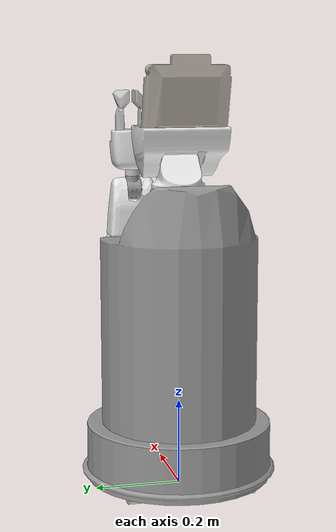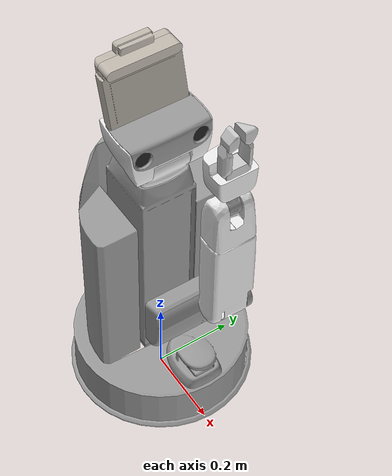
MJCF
<?xml version="1.0" ?>
<mujoco model="hsrb">
	<compiler meshdir="hsrb/meshes" texturedir="hsrb/textures" angle="radian" autolimits="true" balanceinertia="true" boundmass="0.000001" boundinertia="0.000001"/>
	<default>
		<default class="hsrb_visual">
			<geom contype="0" conaffinity="0"/>
		</default>
		<default class="hsrb_collision">
			<geom rgba="0.7843137254901961 0.7843137254901961 0.7843137254901961 0.0"/>
		</default>
	</default>
	<asset>
		<mesh name="base_light" file="obj/base_light.obj" scale="1.0 1.0 1.0"/>
		<mesh name="body_light" file="obj/body_light.obj" scale="1.0 1.0 1.0"/>
		<mesh name="torso_base" file="obj/torso_base.obj" scale="1.0 1.0 1.0"/>
		<mesh name="base" file="stl/base.stl" scale="1.0 1.0 1.0"/>
		<mesh name="laser" file="stl/laser.stl" scale="1.0 1.0 1.0"/>
		<mesh name="torso_light" file="obj/torso_light.obj" scale="1.0 1.0 1.0"/>
		<mesh name="torso" file="stl/torso.stl" scale="1.0 1.0 1.0"/>
		<mesh name="head_pan" file="stl/head_pan.stl" scale="1.0 1.0 1.0"/>
		<mesh name="head_upper" file="obj/head_upper.obj" scale="1.0 1.0 1.0"/>
		<mesh name="head_tilt" file="obj/head_tilt.obj" scale="1.0 1.0 1.0"/>
		<mesh name="tablet_base" file="obj/tablet_base.obj" scale="1.0 1.0 1.0"/>
		<mesh name="head" file="stl/head.stl" scale="1.0 1.0 1.0"/>
		<mesh name="tablet" file="stl/tablet.stl" scale="1.0 1.0 1.0"/>
		<mesh name="head_camera" file="obj/head_camera.obj" scale="1.0 1.0 1.0"/>
		<mesh name="rgbd_light" file="obj/rgbd_light.obj" scale="1.0 1.0 1.0"/>
		<mesh name="rgbd" file="stl/rgbd.stl" scale="1.0 1.0 1.0"/>
		<mesh name="shoulder" file="stl/shoulder.stl" scale="1.0 1.0 1.0"/>
		<mesh name="arm_flex_light" file="obj/arm_flex_light.obj" scale="1.0 1.0 1.0"/>
		<mesh name="arm_flex" file="stl/arm_flex.stl" scale="1.0 1.0 1.0"/>
		<mesh name="arm_roll_light" file="obj/arm_roll_light.obj" scale="1.0 1.0 1.0"/>
		<mesh name="arm_roll" file="stl/arm_roll.stl" scale="1.0 1.0 1.0"/>
		<mesh name="wrist_flex" file="obj/wrist_flex.obj" scale="1.0 1.0 1.0"/>
		<mesh name="wrist_roll" file="stl/wrist_roll.stl" scale="1.0 1.0 1.0"/>
		<mesh name="palm" file="stl/palm.stl" scale="1.0 1.0 1.0"/>
		<mesh name="l_proximal" file="stl/l_proximal.stl" scale="1.0 1.0 1.0"/>
		<mesh name="l_distal" file="stl/l_distal.stl" scale="1.0 1.0 1.0"/>
		<mesh name="r_proximal" file="stl/r_proximal.stl" scale="1.0 1.0 1.0"/>
		<mesh name="r_distal" file="stl/r_distal.stl" scale="1.0 1.0 1.0"/>
		<material name="M_base_link_visual_0" texture="gray"/>
		<material name="M_base_link_visual_1" texture="gray"/>
		<material name="M_base_link_visual_2" texture="gray"/>
		<material name="M_base_range_sensor_link_visual_0" texture="gray"/>
		<material name="M_torso_lift_link_visual_0" texture="gray"/>
		<material name="M_head_pan_link_visual_0" texture="white"/>
		<material name="M_head_tilt_link_visual_0" texture="gray"/>
		<material name="M_head_tilt_link_visual_1" texture="white"/>
		<material name="M_head_tilt_link_visual_2" texture="microphone"/>
		<material name="M_head_l_stereo_camera_link_visual_0" texture="black"/>
		<material name="M_head_r_stereo_camera_link_visual_0" texture="black"/>
		<material name="M_head_rgbd_sensor_link_visual_0" texture="rgbd"/>
		<material name="M_arm_lift_link_visual_0" texture="gray"/>
		<material name="M_arm_flex_link_visual_0" texture="white"/>
		<material name="M_arm_roll_link_visual_0" texture="white"/>
		<material name="M_wrist_flex_link_visual_0" texture="gray"/>
		<material name="M_wrist_roll_link_visual_0" texture="white"/>
		<texture name="gray" type="2d" file="gray.png"/>
		<texture name="white" type="2d" file="white.png"/>
		<texture name="microphone" type="2d" file="microphone.png"/>
		<texture name="black" type="2d" file="black.png"/>
		<texture name="rgbd" type="2d" file="rgbd.png"/>
	</asset>
	<worldbody>
		<body name="hsrb" pos="0.0 0.0 0.0" quat="1.0 0.0 0.0 0.0">
			<joint name="odom_vel_lin_x_joint" type="slide" axis="1.0 0.0 0.0"/>
			<joint name="odom_vel_lin_y_joint" type="slide" axis="0.0 1.0 0.0"/>
			<joint name="odom_vel_ang_z_joint" type="hinge" axis="0.0 0.0 1.0"/>
			<body name="base_footprint" pos="0.0 0.0 0.0" quat="1.0 0.0 0.0 0.0">
				<inertial mass="0.0" pos="0.0 0.0 0.0" quat="1.0 0.0 0.0 0.0" diaginertia="0.0 0.0 0.0"/>
				<body name="base_link" pos="0.0 0.0 0.0" quat="1.0 0.0 0.0 0.0">
					<inertial mass="51.38246154785156" pos="-0.036911655217409134 0.0005294239963404834 0.2725730836391449" quat="0.00031106165261007845 0.6520857810974121 0.0011596735566854477 0.7581442594528198" diaginertia="0.8733259439468384 6.004275798797607 6.15233039855957"/>
					<geom name="SM_base_link_visual_0" type="mesh" pos="0.0 0.0 0.0" quat="1.0 0.0 0.0 0.0" mesh="base_light" material="M_base_link_visual_0" class="hsrb_visual"/>
					<geom name="SM_base_link_visual_1" type="mesh" pos="0.0 0.0 0.0" quat="1.0 0.0 0.0 0.0" mesh="body_light" material="M_base_link_visual_1" class="hsrb_visual"/>
					<geom name="SM_base_link_visual_2" type="mesh" pos="0.0 0.0 0.0" quat="1.0 0.0 0.0 0.0" mesh="torso_base" material="M_base_link_visual_2" class="hsrb_visual"/>
					<geom name="SM_base_link_collision_0" type="mesh" pos="0.0 0.0 0.0" quat="1.0 0.0 0.0 0.0" mesh="base" class="hsrb_collision"/>
					<body name="base_range_sensor_link" pos="0.16750000417232513 0.0 0.18440000712871552" quat="1.0 0.0 0.0 0.0">
						<inertial mass="0.13287509977817535" pos="-4.4308851726571064e-11 -2.1491329549316873e-10 -0.005050084087997675" quat="0.25146082043647766 -0.6608838438987732 0.25146082043647766 0.6608838438987732" diaginertia="4.4946875277673826e-05 7.912974979262799e-05 7.912974979262799e-05"/>
						<geom name="SM_base_range_sensor_link_visual_0" type="mesh" pos="0.0 0.0 0.0" quat="1.0 0.0 0.0 0.0" mesh="laser" material="M_base_range_sensor_link_visual_0" class="hsrb_visual"/>
						<geom name="SM_base_range_sensor_link_collision_0" type="mesh" pos="0.0 0.0 0.0" quat="1.0 0.0 0.0 0.0" mesh="laser" class="hsrb_collision"/>
					</body>
					<body name="torso_lift_link" pos="0.0 0.0 0.7519999742507935" quat="1.0 0.0 0.0 0.0">
						<inertial mass="11.268409729003906" pos="-0.038848523050546646 -0.0004158369265496731 -0.3223643898963928" quat="0.5241636037826538 -0.5239796042442322 -0.47535187005996704 -0.474065899848938" diaginertia="0.04201531782746315 1.4784327745437622 1.4862946271896362"/>
						<geom name="SM_torso_lift_link_visual_0" type="mesh" pos="0.0 0.0 0.0" quat="1.0 0.0 0.0 0.0" mesh="torso_light" material="M_torso_lift_link_visual_0" class="hsrb_visual"/>
						<geom name="SM_torso_lift_link_collision_0" type="mesh" pos="0.0 0.0 0.0" quat="1.0 0.0 0.0 0.0" mesh="torso" class="hsrb_collision"/>
						<joint damping="10.0" name="torso_lift_joint" type="slide" pos="0.0 0.0 0.0" range="0.0 0.3449999988079071" axis="0.0 0.0 1.0"/>
						<body name="head_pan_link" pos="0.0 0.0 0.0" quat="1.0 0.0 0.0 0.0">
							<inertial mass="0.31557589769363403" pos="-0.006927147973328829 -2.5756405648280634e-06 -0.02850755862891674" quat="-0.00023151653294917196 -0.5442028045654297 4.771801468450576e-05 0.8389536738395691" diaginertia="0.0003908935468643904 0.0005272923153825104 0.0006329496391117573"/>
							<geom name="SM_head_pan_link_visual_0" type="mesh" pos="0.0 0.0 0.0" quat="1.0 0.0 0.0 0.0" mesh="head_pan" material="M_head_pan_link_visual_0" class="hsrb_visual"/>
							<geom name="SM_head_pan_link_collision_0" type="mesh" pos="0.0 0.0 0.0" quat="1.0 0.0 0.0 0.0" mesh="head_pan" class="hsrb_collision"/>
							<joint damping="10.0" name="head_pan_joint" type="hinge" pos="0.0 0.0 0.0" range="-3.8399999141693115 1.75" axis="0.0 0.0 1.0"/>
							<body name="head_tilt_link" pos="0.019999999552965164 0.0 0.0" quat="1.0 0.0 0.0 0.0">
								<inertial mass="4.578278541564941" pos="-0.055457424372434616 3.3125500067399116e-06 0.0913025513291359" quat="0.8760982155799866 0.003523292252793908 0.482119083404541 -0.0008134231902658939" diaginertia="0.018316378816962242 0.08084337413311005 0.09207417815923691"/>
								<geom name="SM_head_tilt_link_visual_0" type="mesh" pos="0.0 0.0 0.0" quat="1.0 0.0 0.0 0.0" mesh="head_upper" material="M_head_tilt_link_visual_0" class="hsrb_visual"/>
								<geom name="SM_head_tilt_link_visual_1" type="mesh" pos="0.0 0.0 0.0" quat="1.0 0.0 0.0 0.0" mesh="head_tilt" material="M_head_tilt_link_visual_1" class="hsrb_visual"/>
								<geom name="SM_head_tilt_link_visual_2" type="mesh" pos="0.0 0.0 0.0" quat="1.0 0.0 0.0 0.0" mesh="tablet_base" material="M_head_tilt_link_visual_2" class="hsrb_visual"/>
								<geom name="SM_head_tilt_link_collision_0" type="mesh" pos="0.0 0.0 0.0" quat="1.0 0.0 0.0 0.0" mesh="head" class="hsrb_collision"/>
								<geom name="SM_head_tilt_link_collision_1" type="mesh" pos="0.0 0.0 0.0" quat="1.0 0.0 0.0 0.0" mesh="tablet" class="hsrb_collision"/>
								<joint damping="10.0" name="head_tilt_joint" type="hinge" pos="0.0 0.0 0.0" range="-1.5700000524520874 0.5200000405311584" axis="0.0 -1.0 0.0"/>
								<body name="head_r_stereo_camera_link" pos="0.019999999552965164 -0.07000000029802322 0.061000000685453415" quat="0.5 -0.5 0.5 -0.5">
									<inertial mass="0.0" pos="0.0 0.0 0.0" quat="1.0 0.0 0.0 0.0" diaginertia="0.0 0.0 0.0"/>
									<geom name="SM_head_r_stereo_camera_link_visual_0" type="mesh" pos="0.0 0.0 0.0" quat="1.0 0.0 0.0 0.0" mesh="head_camera" material="M_head_r_stereo_camera_link_visual_0" class="hsrb_visual"/>
									<body name="head_r_stereo_camera_gazebo_frame" pos="0.0 0.0 0.0" quat="0.5 0.5 -0.5 0.5">
										<inertial mass="0.0" pos="0.0 0.0 0.0" quat="1.0 0.0 0.0 0.0" diaginertia="0.0 0.0 0.0"/>
									</body>
								</body>
								<body name="head_center_camera_frame" pos="0.019500000402331352 0.0 0.061000000685453415" quat="0.5 -0.5 0.5 -0.5">
									<inertial mass="0.0" pos="0.0 0.0 0.0" quat="1.0 0.0 0.0 0.0" diaginertia="0.0 0.0 0.0"/>
									<body name="head_center_camera_gazebo_frame" pos="0.0 0.0 0.0" quat="0.5 0.5 -0.5 0.5">
										<inertial mass="0.0" pos="0.0 0.0 0.0" quat="1.0 0.0 0.0 0.0" diaginertia="0.0 0.0 0.0"/>
									</body>
								</body>
								<body name="head_rgbd_sensor_link" pos="-0.07979600131511688 0.02199999988079071 0.21517199277877808" quat="0.5 -0.5 0.5 -0.5">
									<inertial mass="0.1929166316986084" pos="0.022312525659799576 0.003084133379161358 -0.015074222348630428" quat="0.7691020369529724 -0.6354175806045532 0.04338100925087929 0.05333554744720459" diaginertia="7.308930798899382e-05 0.000560473941732198 0.000600011320784688"/>
									<geom name="SM_head_rgbd_sensor_link_visual_0" type="mesh" pos="0.0 0.0 0.0" quat="1.0 0.0 0.0 0.0" mesh="rgbd_light" material="M_head_rgbd_sensor_link_visual_0" class="hsrb_visual"/>
									<geom name="SM_head_rgbd_sensor_link_collision_0" type="mesh" pos="0.0 0.0 0.0" quat="1.0 0.0 0.0 0.0" mesh="rgbd" class="hsrb_collision"/>
									<body name="head_rgbd_sensor_gazebo_frame" pos="0.0 0.0 0.0" quat="0.5 0.5 -0.5 0.5">
										<inertial mass="0.0" pos="0.0 0.0 0.0" quat="1.0 0.0 0.0 0.0" diaginertia="0.0 0.0 0.0"/>
									</body>
								</body>
								<body name="head_l_stereo_camera_link" pos="0.019999999552965164 0.07000000029802322 0.061000000685453415" quat="0.5 -0.5 0.5 -0.5">
									<inertial mass="0.0" pos="0.0 0.0 0.0" quat="1.0 0.0 0.0 0.0" diaginertia="0.0 0.0 0.0"/>
									<geom name="SM_head_l_stereo_camera_link_visual_0" type="mesh" pos="0.0 0.0 0.0" quat="1.0 0.0 0.0 0.0" mesh="head_camera" material="M_head_l_stereo_camera_link_visual_0" class="hsrb_visual"/>
									<body name="head_l_stereo_camera_gazebo_frame" pos="0.0 0.0 0.0" quat="0.5 0.5 -0.5 0.5">
										<inertial mass="0.0" pos="0.0 0.0 0.0" quat="1.0 0.0 0.0 0.0" diaginertia="0.0 0.0 0.0"/>
									</body>
								</body>
							</body>
						</body>
					</body>
					<body name="arm_lift_link" pos="0.0 0.0 0.3400000035762787" quat="1.0 0.0 0.0 0.0">
						<inertial mass="0.1369386464357376" pos="0.0813228189945221 0.026763053610920906 -0.04826762154698372" quat="-0.2750156819820404 0.9039556980133057 0.13705113530158997 -0.2974012494087219" diaginertia="0.0009512149845249951 0.0017490539466962218 0.0022147856652736664"/>
						<geom name="SM_arm_lift_link_visual_0" type="mesh" pos="0.0 0.0 0.0" quat="1.0 0.0 0.0 0.0" mesh="shoulder" material="M_arm_lift_link_visual_0" class="hsrb_visual"/>
						<geom name="SM_arm_lift_link_collision_0" type="mesh" pos="0.0 0.0 0.0" quat="1.0 0.0 0.0 0.0" mesh="shoulder" class="hsrb_collision"/>
						<joint damping="10.0" name="arm_lift_joint" type="slide" pos="0.0 0.0 0.0" range="0.0 0.6899999976158142" axis="0.0 0.0 1.0"/>
						<body name="arm_flex_link" pos="0.14100000262260437 0.07800000160932541 0.0" quat="1.0 0.0 0.0 0.0">
							<inertial mass="2.1093451976776123" pos="-0.0004589901363942772 0.0065834117121994495 0.10606901347637177" quat="0.01475102361291647 0.7085751891136169 -0.019227612763643265 -0.705219030380249" diaginertia="0.0029768238309770823 0.03662457689642906 0.037757232785224915"/>
							<geom name="SM_arm_flex_link_visual_0" type="mesh" pos="0.0 0.0 0.0" quat="1.0 0.0 0.0 0.0" mesh="arm_flex_light" material="M_arm_flex_link_visual_0" class="hsrb_visual"/>
							<geom name="SM_arm_flex_link_collision_0" type="mesh" pos="0.0 0.0 0.0" quat="1.0 0.0 0.0 0.0" mesh="arm_flex" class="hsrb_collision"/>
							<joint damping="10.0" name="arm_flex_joint" type="hinge" pos="0.0 0.0 0.0" range="-2.620000123977661 0.0" axis="0.0 -1.0 0.0"/>
							<body name="arm_roll_link" pos="0.004999999888241291 0.0 0.3449999988079071" quat="1.0 0.0 0.0 0.0">
								<inertial mass="0.9090999960899353" pos="-0.004909095820039511 0.003416739171370864 -0.04720309004187584" quat="0.673842191696167 0.032797303050756454 0.7376915216445923 0.025928547605872154" diaginertia="0.001125680049881339 0.0036435395013540983 0.0040444317273795605"/>
								<geom name="SM_arm_roll_link_visual_0" type="mesh" pos="0.0 0.0 0.0" quat="1.0 0.0 0.0 0.0" mesh="arm_roll_light" material="M_arm_roll_link_visual_0" class="hsrb_visual"/>
								<geom name="SM_arm_roll_link_collision_0" type="mesh" pos="0.0 0.0 0.0" quat="1.0 0.0 0.0 0.0" mesh="arm_roll" class="hsrb_collision"/>
								<joint damping="10.0" name="arm_roll_joint" type="hinge" pos="-4.336808689942018e-18 0.0 -5.551115123125783e-17" range="-2.0899999141693115 3.8399999141693115" axis="0.0 0.0 1.0"/>
								<body name="wrist_flex_link" pos="0.0 0.0 0.0" quat="1.0 0.0 0.0 0.0">
									<inertial mass="0.03631681203842163" pos="0.0 0.0 0.029999999329447746" quat="0.7071067690849304 0.0 0.7071067690849304 0.0" diaginertia="5.247779427008936e-06 4.015126251033507e-05 4.015126251033507e-05"/>
									<geom name="SM_wrist_flex_link_visual_0" type="mesh" pos="0.0 0.0 0.0" quat="1.0 0.0 0.0 0.0" mesh="wrist_flex" material="M_wrist_flex_link_visual_0" class="hsrb_visual"/>
									<geom name="SM_wrist_flex_link_visual_1" type="cylinder" pos="0.0 0.0 0.03999999910593033" quat="1.0 0.0 0.0 0.0" size="0.017000000923871994 0.009999999776482582 0.0" rgba="0.78431374 0.78431374 0.78431374 1.0" class="hsrb_visual"/>
									<geom name="SM_wrist_flex_link_collision_0" type="cylinder" pos="0.0 0.0 0.029999999329447746" quat="1.0 0.0 0.0 0.0" size="0.017000000923871994 0.019999999552965164 0.0" class="hsrb_collision"/>
									<joint damping="10.0" name="wrist_flex_joint" type="hinge" pos="0.0 0.0 0.0" range="-1.9199999570846558 1.21999990940094" axis="0.0 -1.0 0.0"/>
									<body name="wrist_roll_link" pos="0.0 0.0 0.0" quat="1.0 0.0 0.0 0.0">
										<inertial mass="0.06149858608841896" pos="-0.010066617280244827 -2.47548523475416e-05 0.0884910598397255" quat="-0.6550278663635254 2.011494871112518e-05 0.7556046843528748 0.0003620499628596008" diaginertia="0.00011161583825014532 0.0005890678730793297 0.000613926793448627"/>
										<geom name="SM_wrist_roll_link_visual_0" type="mesh" pos="0.0 0.0 0.0" quat="1.0 0.0 0.0 0.0" mesh="wrist_roll" material="M_wrist_roll_link_visual_0" class="hsrb_visual"/>
										<geom name="SM_wrist_roll_link_collision_0" type="mesh" pos="0.0 0.0 0.0" quat="1.0 0.0 0.0 0.0" mesh="wrist_roll" class="hsrb_collision"/>
										<joint damping="10.0" name="wrist_roll_joint" type="hinge" pos="0.0 0.0 0.0" range="-1.9199999570846558 3.6700000762939453" axis="0.0 0.0 1.0"/>
										<body name="hand_palm_link" pos="0.012000000104308128 0.0 0.1404999941587448" quat="-1.0341155557737347e-13 0.0 0.0 1.0">
											<inertial mass="0.08773984014987946" pos="0.0012877753470093012 0.00030466882162727416 -0.024661114439368248" quat="-0.6860979795455933 -0.010482939891517162 0.7274026870727539 0.006707098800688982" diaginertia="3.0547216738341376e-05 7.715255196671933e-05 9.0780173195526e-05"/>
											<geom name="SM_hand_palm_link_visual_0" type="mesh" pos="0.0 0.0 0.0" quat="1.0 0.0 0.0 0.0" mesh="palm" rgba="0.78431374 0.78431374 0.78431374 1.0" class="hsrb_visual"/>
											<geom name="SM_hand_palm_link_collision_0" type="mesh" pos="0.0 0.0 0.0" quat="1.0 0.0 0.0 0.0" mesh="palm" class="hsrb_collision"/>
											<body name="hand_l_proximal_link" pos="-0.016750000417232513 -0.02449999935925007 -0.017500000074505806" quat="1.0 0.0 0.0 0.0">
												<inertial mass="0.001" pos="0.0 0.0 0.0" quat="1.0 0.0 0.0 0.0" diaginertia="0.001 0.001 0.001"/>
												<joint damping="10.0" name="hand_l_proximal_joint" type="hinge" pos="-1.3877787807814457e-17 -6.938893903907228e-18 -4.163336342344337e-17" range="-0.7979999780654907 1.2400000095367432" axis="1.0 0.0 0.0"/>
												<body name="hand_l_spring_proximal_link" pos="0.0 0.0 0.0" quat="1.0 0.0 0.0 0.0">
													<inertial mass="0.042135074734687805" pos="0.018756786361336708 -0.0022016807924956083 0.030663585290312767" quat="-0.5874428749084473 0.6060451865196228 0.3529996871948242 0.403746634721756" diaginertia="8.60757427290082e-06 7.024005753919482e-05 7.688956247875467e-05"/>
													<geom name="SM_hand_l_spring_proximal_link_visual_0" type="mesh" pos="0.0 0.0 0.0" quat="1.0 0.0 0.0 0.0" mesh="l_proximal" rgba="0.78431374 0.78431374 0.78431374 1.0" class="hsrb_visual"/>
													<geom name="SM_hand_l_spring_proximal_link_collision_0" type="mesh" pos="0.0 0.0 0.0" quat="1.0 0.0 0.0 0.0" mesh="l_proximal" class="hsrb_collision"/>
													<joint damping="10.0" name="hand_l_spring_proximal_joint" type="hinge" pos="0.0 0.0 0.0" range="0.0 0.6980000138282776" axis="1.0 0.0 0.0"/>
													<body name="hand_l_mimic_distal_link" pos="0.0 0.0 0.07000000029802322" quat="1.0 0.0 0.0 0.0">
														<inertial mass="0.001" pos="0.0 0.0 0.0" quat="1.0 0.0 0.0 0.0" diaginertia="0.001 0.001 0.001"/>
														<joint damping="10.0" name="hand_l_mimic_distal_joint" type="hinge" pos="0.0 0.0 5.551115123125783e-17" range="-0.6980000138282776 -0.0" axis="1.0 0.0 0.0"/>
														<body name="hand_l_distal_link" pos="0.0 0.0 0.0" quat="1.0 0.0 0.0 0.0">
															<inertial mass="0.03458765894174576" pos="0.01525004580616951 0.004431677516549826 0.019333720207214355" quat="0.3817766010761261 0.23210614919662476 0.6331768035888672 -0.6320288777351379" diaginertia="6.055272024241276e-06 2.712272726057563e-05 2.945130836451426e-05"/>
															<geom name="SM_hand_l_distal_link_visual_0" type="mesh" pos="0.0 0.0 0.0" quat="1.0 0.0 0.0 0.0" mesh="l_distal" rgba="0.78431374 0.78431374 0.78431374 1.0" class="hsrb_visual"/>
															<geom name="SM_hand_l_distal_link_collision_0" type="mesh" pos="0.0 0.0 0.0" quat="1.0 0.0 0.0 0.0" mesh="l_distal" class="hsrb_collision"/>
															<joint damping="10.0" name="hand_l_distal_joint" type="hinge" pos="0.0 0.0 0.0" range="-1.2400000095367432 0.7979999780654907" axis="1.0 0.0 0.0"/>
															<body name="hand_l_finger_vacuum_frame" pos="0.004749999847263098 -0.01153900008648634 0.03322000056505203" quat="0.9238795042037964 0.3826834261417389 0.0 0.0">
																<inertial mass="0.001" pos="0.0 0.0 0.0" quat="1.0 0.0 0.0 0.0" diaginertia="0.001 0.001 0.001"/>
																<geom name="SM_hand_l_finger_vacuum_frame_visual_0" type="box" pos="0.0 0.0 -0.009999999776482582" quat="1.0 0.0 0.0 0.0" size="0.004000000189989805 0.004000000189989805 0.009999999776482582" rgba="0.78431374 0.78431374 0.78431374 1.0" class="hsrb_visual"/>
															</body>
															<body name="hand_l_finger_tip_frame" pos="0.016750000417232513 0.019300000742077827 0.03790000081062317" quat="-0.7071067690849304 0.7071067690849304 0.0 0.0">
																<inertial mass="0.0" pos="0.0 0.0 0.0" quat="1.0 0.0 0.0 0.0" diaginertia="0.0 0.0 0.0"/>
															</body>
														</body>
													</body>
												</body>
											</body>
											<body name="hand_r_proximal_link" pos="-0.016750000417232513 0.02449999935925007 -0.017500000074505806" quat="1.0 0.0 0.0 0.0">
												<inertial mass="0.001" pos="0.0 0.0 0.0" quat="1.0 0.0 0.0 0.0" diaginertia="0.001 0.001 0.001"/>
												<joint damping="10.0" name="hand_r_proximal_joint" type="hinge" pos="-1.3877787807814457e-17 2.8702472503576013e-30 -4.163336342344337e-17" range="-0.7979999780654907 1.2400000095367432" axis="-1.0 0.0 0.0"/>
												<body name="hand_r_spring_proximal_link" pos="0.0 0.0 0.0" quat="1.0 0.0 0.0 0.0">
													<inertial mass="0.04147995635867119" pos="0.018127676099538803 0.0021659941412508488 0.030857620760798454" quat="0.6110666990280151 -0.5782454013824463 -0.411460280418396 -0.3506140410900116" diaginertia="7.921276846900582e-06 6.877347186673433e-05 7.483593799406663e-05"/>
													<geom name="SM_hand_r_spring_proximal_link_visual_0" type="mesh" pos="0.0 0.0 0.0" quat="1.0 0.0 0.0 0.0" mesh="r_proximal" rgba="0.78431374 0.78431374 0.78431374 1.0" class="hsrb_visual"/>
													<geom name="SM_hand_r_spring_proximal_link_collision_0" type="mesh" pos="0.0 0.0 0.0" quat="1.0 0.0 0.0 0.0" mesh="r_proximal" class="hsrb_collision"/>
													<joint damping="10.0" name="hand_r_spring_proximal_joint" type="hinge" pos="0.0 0.0 0.0" range="0.0 0.6980000138282776" axis="-1.0 0.0 0.0"/>
													<body name="hand_r_mimic_distal_link" pos="0.0 0.0 0.07000000029802322" quat="1.0 0.0 0.0 0.0">
														<inertial mass="0.001" pos="0.0 0.0 0.0" quat="1.0 0.0 0.0 0.0" diaginertia="0.001 0.001 0.001"/>
														<joint damping="10.0" name="hand_r_mimic_distal_joint" type="hinge" pos="0.0 0.0 5.551115123125783e-17" range="-0.6980000138282776 -0.0" axis="-1.0 0.0 0.0"/>
														<body name="hand_r_distal_link" pos="0.0 0.0 0.0" quat="1.0 0.0 0.0 0.0">
															<inertial mass="0.024421628564596176" pos="0.017135124653577805 -0.007652597967535257 0.01713944971561432" quat="0.21702277660369873 0.3457382321357727 0.7525501251220703 -0.5167538523674011" diaginertia="3.450870281085372e-06 1.9094664821750484e-05 2.1310002921381965e-05"/>
															<geom name="SM_hand_r_distal_link_visual_0" type="mesh" pos="0.0 0.0 0.0" quat="1.0 0.0 0.0 0.0" mesh="r_distal" rgba="0.78431374 0.78431374 0.78431374 1.0" class="hsrb_visual"/>
															<geom name="SM_hand_r_distal_link_collision_0" type="mesh" pos="0.0 0.0 0.0" quat="1.0 0.0 0.0 0.0" mesh="r_distal" class="hsrb_collision"/>
															<joint damping="10.0" name="hand_r_distal_joint" type="hinge" pos="0.0 0.0 0.0" range="-1.2400000095367432 0.7979999780654907" axis="-1.0 0.0 0.0"/>
															<body name="hand_r_finger_tip_frame" pos="0.016750000417232513 -0.019300000742077827 0.03790000081062317" quat="0.7071067690849304 0.7071067690849304 0.0 0.0">
																<inertial mass="0.001" pos="0.0 0.0 0.0" quat="1.0 0.0 0.0 0.0" diaginertia="0.001 0.001 0.001"/>
															</body>
														</body>
													</body>
												</body>
											</body>
											<body name="hand_camera_frame" pos="0.039000000804662704 -1.3877787807814457e-17 -0.0044999998062849045" quat="1.0 0.0 0.0 0.0">
												<inertial mass="0.0" pos="0.0 0.0 0.0" quat="1.0 0.0 0.0 0.0" diaginertia="0.0 0.0 0.0"/>
												<body name="hand_camera_gazebo_frame" pos="0.0 0.0 0.0" quat="0.5 0.5 -0.5 0.5">
													<inertial mass="0.0" pos="0.0 0.0 0.0" quat="1.0 0.0 0.0 0.0" diaginertia="0.0 0.0 0.0"/>
												</body>
											</body>
											<body name="hand_gripper_tool_frame" pos="0.0 0.0 0.07000000029802322" quat="1.0 0.0 0.0 0.0">
												<inertial mass="0.0" pos="0.0 0.0 0.0" quat="1.0 0.0 0.0 0.0" diaginertia="0.0 0.0 0.0"/>
											</body>
											<body name="hand_motor_dummy_link" pos="0.0 0.0 0.0" quat="1.0 0.0 0.0 0.0">
												<inertial mass="0.001" pos="0.0 0.0 0.0" quat="1.0 0.0 0.0 0.0" diaginertia="0.001 0.001 0.001"/>
												<joint damping="10.0" name="hand_motor_joint" type="hinge" pos="0.0 0.0 0.0" range="-0.7979999780654907 1.2400000095367432" axis="1.0 0.0 0.0"/>
											</body>
										</body>
										<body name="wrist_ft_sensor_frame" pos="0.0 0.0 0.07349999994039536" quat="-1.0341155557737347e-13 1.0 0.0 0.0">
											<inertial mass="0.0" pos="0.0 0.0 0.0" quat="1.0 0.0 0.0 0.0" diaginertia="0.0 0.0 0.0"/>
										</body>
									</body>
								</body>
							</body>
						</body>
					</body>
					<body name="base_roll_link" pos="0.0 0.0 0.0" quat="1.0 0.0 0.0 0.0">
						<inertial mass="0.0" pos="0.0 0.0 0.0" quat="1.0 0.0 0.0 0.0" diaginertia="0.0 0.0 0.0"/>
						<joint damping="10.0" name="base_roll_joint" type="hinge" pos="0.0 0.0 0.0" axis="0.0 0.0 1.0"/>
						<body name="base_l_drive_wheel_link" pos="-0.10999999940395355 0.13300000131130219 0.03999999910593033" quat="1.0 0.0 0.0 0.0">
							<inertial mass="0.15079644322395325" pos="0.0 0.0 0.0" quat="0.0 0.0 0.7071067690849304 -0.7071067690849304" diaginertia="7.162831025198102e-05 7.162831025198102e-05 0.00012063715985277668"/>
							<geom name="SM_base_l_drive_wheel_link_visual_0" type="cylinder" pos="0.0 0.0 0.0" quat="0.7071067690849304 0.7071067690849304 0.0 0.0" size="0.03999999910593033 0.014999999664723873 0.0" rgba="0.78431374 0.78431374 0.78431374 1.0" class="hsrb_visual"/>
							<geom name="SM_base_l_drive_wheel_link_collision_0" type="cylinder" pos="0.0 0.0 0.0" quat="0.7071067690849304 0.7071067690849304 0.0 0.0" size="0.03999999910593033 0.014999999664723873 0.0" class="hsrb_collision"/>
							<joint damping="10.0" name="base_l_drive_wheel_joint" type="hinge" pos="0.0 0.0 0.0" axis="0.0 1.0 0.0"/>
						</body>
						<body name="base_l_passive_wheel_x_frame" pos="0.14949999749660492 0.054999999701976776 0.029999999329447746" quat="1.0 0.0 0.0 0.0">
							<inertial mass="0.0" pos="0.0 0.0 0.0" quat="1.0 0.0 0.0 0.0" diaginertia="0.0 0.0 0.0"/>
							<joint damping="10.0" name="base_l_passive_wheel_x_frame_joint" type="hinge" pos="0.0 0.0 0.0" axis="1.0 0.0 0.0"/>
							<body name="base_l_passive_wheel_y_frame" pos="0.0 0.0 0.0" quat="1.0 0.0 0.0 0.0">
								<inertial mass="0.0" pos="0.0 0.0 0.0" quat="1.0 0.0 0.0 0.0" diaginertia="0.0 0.0 0.0"/>
								<joint damping="10.0" name="base_l_passive_wheel_y_frame_joint" type="hinge" pos="0.0 0.0 0.0" axis="0.0 1.0 0.0"/>
								<body name="base_l_passive_wheel_z_link" pos="0.0 0.0 0.0" quat="1.0 0.0 0.0 0.0">
									<inertial mass="0.11309733241796494" pos="0.0 0.0 0.0" quat="1.0 0.0 0.0 0.0" diaginertia="4.0715040086070076e-05 4.0715040086070076e-05 4.0715040086070076e-05"/>
									<geom name="SM_base_l_passive_wheel_z_link_visual_0" type="sphere" pos="0.0 0.0 0.0" quat="1.0 0.0 0.0 0.0" size="0.029999999329447746 0.0 0.0" rgba="0.78431374 0.78431374 0.78431374 1.0" class="hsrb_visual"/>
									<geom name="SM_base_l_passive_wheel_z_link_collision_0" type="sphere" pos="0.0 0.0 0.0" quat="1.0 0.0 0.0 0.0" size="0.029999999329447746 0.0 0.0" class="hsrb_collision"/>
									<joint damping="10.0" name="base_l_passive_wheel_z_joint" type="hinge" pos="0.0 0.0 0.0" axis="0.0 0.0 1.0"/>
								</body>
							</body>
						</body>
						<body name="base_r_drive_wheel_link" pos="-0.10999999940395355 -0.13300000131130219 0.03999999910593033" quat="1.0 0.0 0.0 0.0">
							<inertial mass="0.15079644322395325" pos="0.0 0.0 0.0" quat="0.0 0.0 0.7071067690849304 -0.7071067690849304" diaginertia="7.162831025198102e-05 7.162831025198102e-05 0.00012063715985277668"/>
							<geom name="SM_base_r_drive_wheel_link_visual_0" type="cylinder" pos="0.0 0.0 0.0" quat="0.7071067690849304 0.7071067690849304 0.0 0.0" size="0.03999999910593033 0.014999999664723873 0.0" rgba="0.78431374 0.78431374 0.78431374 1.0" class="hsrb_visual"/>
							<geom name="SM_base_r_drive_wheel_link_collision_0" type="cylinder" pos="0.0 0.0 0.0" quat="0.7071067690849304 0.7071067690849304 0.0 0.0" size="0.03999999910593033 0.014999999664723873 0.0" class="hsrb_collision"/>
							<joint damping="10.0" name="base_r_drive_wheel_joint" type="hinge" pos="0.0 0.0 0.0" axis="0.0 1.0 0.0"/>
						</body>
						<body name="base_r_passive_wheel_x_frame" pos="0.14949999749660492 -0.054999999701976776 0.029999999329447746" quat="1.0 0.0 0.0 0.0">
							<inertial mass="0.0" pos="0.0 0.0 0.0" quat="1.0 0.0 0.0 0.0" diaginertia="0.0 0.0 0.0"/>
							<joint damping="10.0" name="base_r_passive_wheel_x_frame_joint" type="hinge" pos="0.0 0.0 0.0" axis="1.0 0.0 0.0"/>
							<body name="base_r_passive_wheel_y_frame" pos="0.0 0.0 0.0" quat="1.0 0.0 0.0 0.0">
								<inertial mass="0.0" pos="0.0 0.0 0.0" quat="1.0 0.0 0.0 0.0" diaginertia="0.0 0.0 0.0"/>
								<joint damping="10.0" name="base_r_passive_wheel_y_frame_joint" type="hinge" pos="0.0 0.0 0.0" axis="0.0 1.0 0.0"/>
								<body name="base_r_passive_wheel_z_link" pos="0.0 0.0 0.0" quat="1.0 0.0 0.0 0.0">
									<inertial mass="0.11309733241796494" pos="0.0 0.0 0.0" quat="1.0 0.0 0.0 0.0" diaginertia="4.0715040086070076e-05 4.0715040086070076e-05 4.0715040086070076e-05"/>
									<geom name="SM_base_r_passive_wheel_z_link_visual_0" type="sphere" pos="0.0 0.0 0.0" quat="1.0 0.0 0.0 0.0" size="0.029999999329447746 0.0 0.0" rgba="0.78431374 0.78431374 0.78431374 1.0" class="hsrb_visual"/>
									<geom name="SM_base_r_passive_wheel_z_link_collision_0" type="sphere" pos="0.0 0.0 0.0" quat="1.0 0.0 0.0 0.0" size="0.029999999329447746 0.0 0.0" class="hsrb_collision"/>
									<joint damping="10.0" name="base_r_passive_wheel_z_joint" type="hinge" pos="0.0 0.0 0.0" axis="0.0 0.0 1.0"/>
								</body>
							</body>
						</body>
					</body>
					<body name="base_imu_frame" pos="0.0005000000237487257 0.12960000336170197 0.1809999942779541" quat="-1.0341155557737347e-13 1.0 0.0 0.0">
						<inertial mass="0.0" pos="0.0 0.0 0.0" quat="1.0 0.0 0.0 0.0" diaginertia="0.0 0.0 0.0"/>
					</body>
				</body>
			</body>
		</body>
	</worldbody>
	<equality>
		<joint name="torso_lift_joint_arm_lift_joint" joint1="torso_lift_joint" joint2="arm_lift_joint" polycoef="0.0 0.5 0.0 0.0 0.0"/>
		<joint name="hand_l_proximal_joint_hand_motor_joint" joint1="hand_l_proximal_joint" joint2="hand_motor_joint" polycoef="0.0 1.0 0.0 0.0 0.0"/>
		<joint name="hand_r_proximal_joint_hand_motor_joint" joint1="hand_r_proximal_joint" joint2="hand_motor_joint" polycoef="0.0 1.0 0.0 0.0 0.0"/>
		<joint name="hand_r_mimic_distal_joint_hand_r_spring_proximal_joint" joint1="hand_r_mimic_distal_joint" joint2="hand_r_spring_proximal_joint" polycoef="0.0 -1.0 0.0 0.0 0.0"/>
		<joint name="hand_l_mimic_distal_joint_hand_l_spring_proximal_joint" joint1="hand_l_mimic_distal_joint" joint2="hand_l_spring_proximal_joint" polycoef="0.0 -1.0 0.0 0.0 0.0"/>
		<joint name="hand_r_distal_joint_hand_motor_joint" joint1="hand_r_distal_joint" joint2="hand_motor_joint" polycoef="-0.08699999749660492 -1.0 0.0 0.0 0.0"/>
		<joint name="hand_l_distal_joint_hand_motor_joint" joint1="hand_l_distal_joint" joint2="hand_motor_joint" polycoef="-0.08699999749660492 -1.0 0.0 0.0 0.0"/>
	</equality>

	<actuator>
		<position name="arm_lift_actuator" joint="arm_lift_joint" kp="2000" kv="500" forcerange="-1500 1500" ctrlrange="0.0 0.6899999976158142" />
		<position name="arm_flex_actuator" joint="arm_flex_joint" kp="500" kv="100" forcerange="-1500 1500" ctrlrange="-2.620000123977661 0.0" />
		<position name="arm_roll_actuator" joint="arm_roll_joint" kp="500" kv="5" forcerange="-1000 1000" ctrlrange="-2.0899999141693115 3.8399999141693115" />
		<position name="wrist_flex_actuator" joint="wrist_flex_joint" kp="200" kv="2" forcerange="-500 500" ctrlrange="-1.9199999570846558 1.21999990940094" />
		<position name="wrist_roll_actuator" joint="wrist_roll_joint" kp="200" kv="2" forcerange="-100 100" ctrlrange="-1.9199999570846558 3.6700000762939453" />

		<motor name="hand_motor_actuator" joint="hand_motor_joint" forcerange="-1000 1000" ctrlrange="-100 100"/>

		<position name="head_pan_actuator" joint="head_pan_joint" kp="500" kv="10" forcerange="-500 500" ctrlrange="-3.8399999141693115 1.75"/>
		<position name="head_tilt_actuator" joint="head_tilt_joint" kp="500" kv="10" forcerange="-500 500" ctrlrange="-1.5700000524520874 0.5200000405311584"/>
	</actuator>

	<contact>
		<exclude name="base_link_arm_lift_link" body1="base_link" body2="arm_lift_link"/>
        <exclude name="base_link_arm_flex_link" body1="base_link" body2="arm_flex_link"/>
        <exclude name="base_link_torso_lift_link" body1="base_link" body2="torso_lift_link"/>
        <exclude name="base_l_drive_wheel_link_base_link" body1="base_l_drive_wheel_link" body2="base_link"/>
        <exclude name="base_l_passive_wheel_z_link_base_link" body1="base_l_passive_wheel_z_link" body2="base_link"/>
        <exclude name="base_r_drive_wheel_link_base_link" body1="base_r_drive_wheel_link" body2="base_link"/>
        <exclude name="base_r_passive_wheel_z_link_base_link" body1="base_r_passive_wheel_z_link" body2="base_link"/>
        <exclude name="wrist_roll_link_hand_r_spring_proximal_link" body1="wrist_roll_link" body2="hand_r_spring_proximal_link"/>
        <exclude name="wrist_roll_link_hand_l_spring_proximal_link" body1="wrist_roll_link" body2="hand_l_spring_proximal_link"/>
        <exclude name="hand_palm_link_hand_r_spring_proximal_link" body1="hand_palm_link" body2="hand_r_spring_proximal_link"/>
        <exclude name="hand_palm_link_hand_l_spring_proximal_link" body1="hand_palm_link" body2="hand_l_spring_proximal_link"/>
        <exclude name="hand_l_spring_proximal_link_hand_l_distal_link" body1="hand_l_spring_proximal_link" body2="hand_l_distal_link"/>
        <exclude name="hand_r_spring_proximal_link_hand_r_distal_link" body1="hand_r_spring_proximal_link" body2="hand_r_distal_link"/>
    </contact>
</mujoco>
